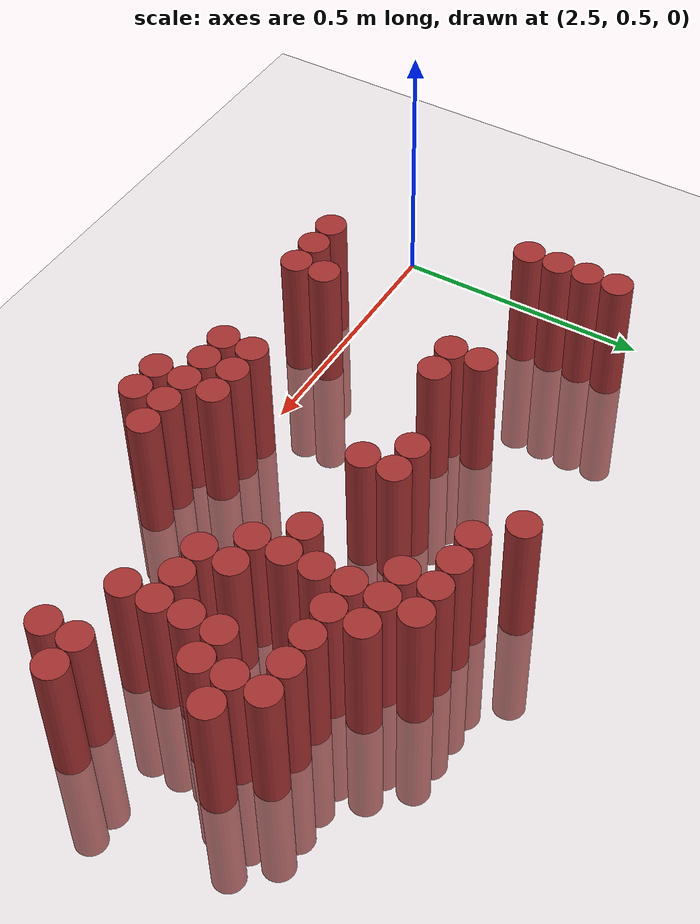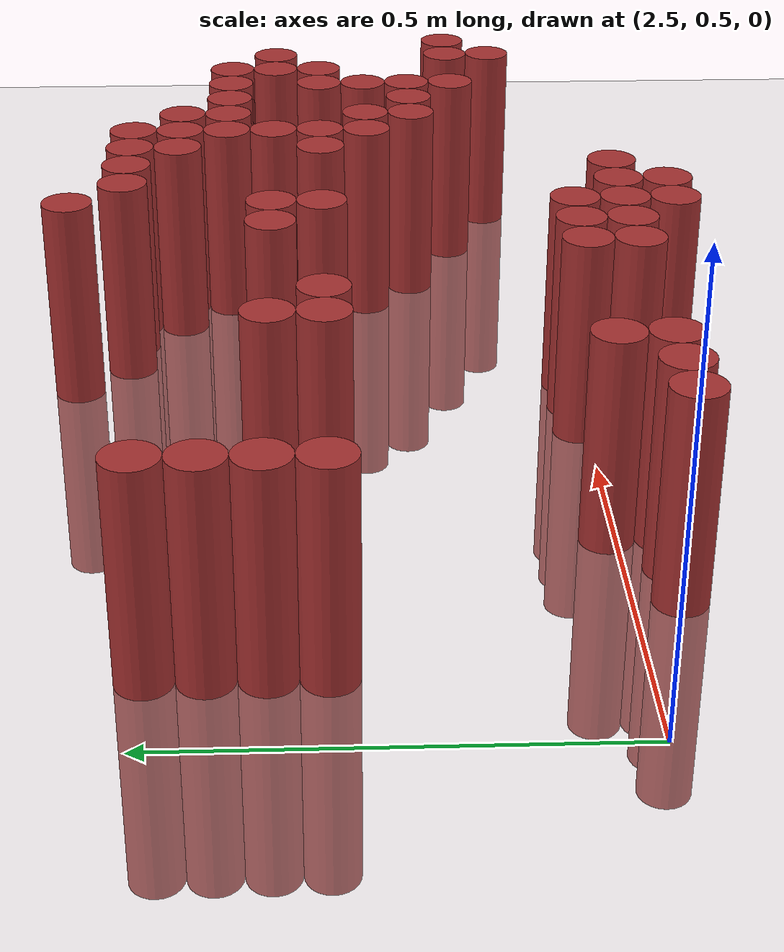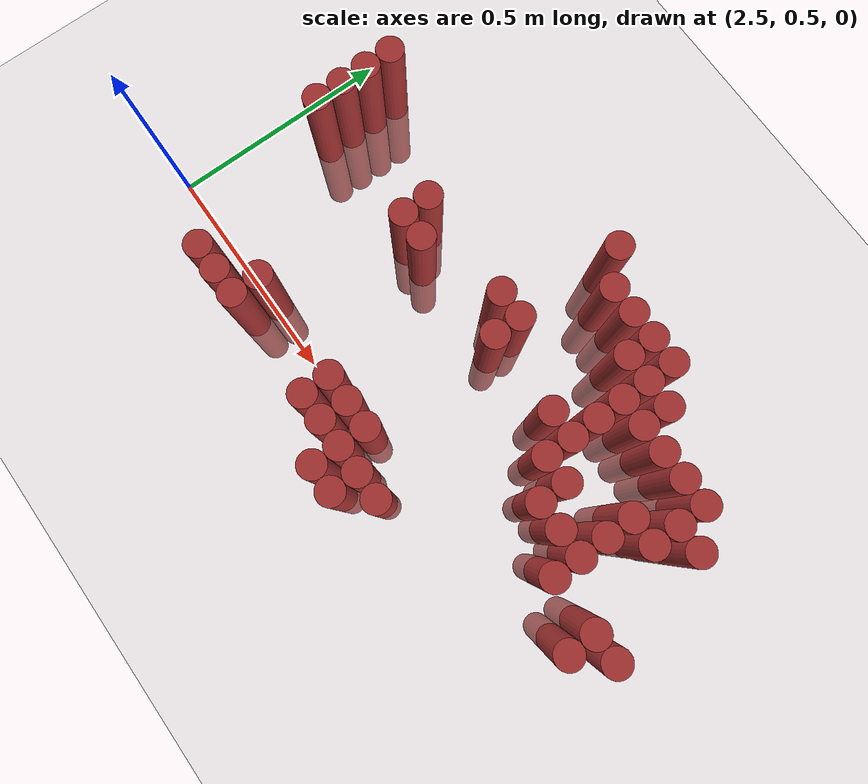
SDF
<sdf version="1.6">
 <world name="default">
  <model name="ground_plane">
   <static>1</static>
   <link name="link">
    <collision name="collision">
     <geometry><plane><normal>0 0 1</normal><size>100 100</size></plane></geometry>
     <surface><friction><ode><mu>100</mu><mu2>50</mu2></ode></friction></surface>
    </collision>
    <visual name="visual">
     <cast_shadows>0</cast_shadows>
     <geometry><plane><normal>0 0 1</normal><size>100 100</size></plane></geometry>
     <material>
      <script><uri>file://media/materials/scripts/gazebo.material</uri><name>Gazebo/Grey</name></script>
     </material>
    </visual>
   </link>
  </model>
  <model name="unit_cylinder_167">
   <static>1</static>
   <pose>3.210000 1.110000 0.000000 0.000000 0.000000 0.000000</pose>
   <link name="link">
    <inertial>
     <mass>1</mass>
     <inertia><ixx>0.145833</ixx><ixy>0</ixy><ixz>0</ixz><iyy>0.145833</iyy><iyz>0</iyz><izz>0.125</izz></inertia>
    </inertial>
    <collision name="collision">
     <geometry><cylinder><radius>0.030000</radius><length>0.5</length></cylinder></geometry>
    </collision>
    <visual name="visual">
     <geometry><cylinder><radius>0.030000</radius><length>0.5</length></cylinder></geometry>
     <material>
      <ambient>0.648000 0.192000 0.192000 1</ambient>
      <diffuse>0.648000 0.192000 0.192000 1</diffuse>
     </material>
     <material>
      <script><name>Gazebo/Grey</name><uri>file://media/materials/scripts/gazebo.material</uri></script>
     </material>
    </visual>
   </link>
  </model>
  <model name="unit_cylinder_173">
   <static>1</static>
   <pose>3.270000 1.050000 0.000000 0.000000 0.000000 0.000000</pose>
   <link name="link">
    <inertial>
     <mass>1</mass>
     <inertia><ixx>0.145833</ixx><ixy>0</ixy><ixz>0</ixz><iyy>0.145833</iyy><iyz>0</iyz><izz>0.125</izz></inertia>
    </inertial>
    <collision name="collision">
     <geometry><cylinder><radius>0.030000</radius><length>0.5</length></cylinder></geometry>
    </collision>
    <visual name="visual">
     <geometry><cylinder><radius>0.030000</radius><length>0.5</length></cylinder></geometry>
     <material>
      <ambient>0.648000 0.192000 0.192000 1</ambient>
      <diffuse>0.648000 0.192000 0.192000 1</diffuse>
     </material>
     <material>
      <script><name>Gazebo/Grey</name><uri>file://media/materials/scripts/gazebo.material</uri></script>
     </material>
    </visual>
   </link>
  </model>
  <model name="unit_cylinder_174">
   <static>1</static>
   <pose>3.330000 1.050000 0.000000 0.000000 0.000000 0.000000</pose>
   <link name="link">
    <inertial>
     <mass>1</mass>
     <inertia><ixx>0.145833</ixx><ixy>0</ixy><ixz>0</ixz><iyy>0.145833</iyy><iyz>0</iyz><izz>0.125</izz></inertia>
    </inertial>
    <collision name="collision">
     <geometry><cylinder><radius>0.030000</radius><length>0.5</length></cylinder></geometry>
    </collision>
    <visual name="visual">
     <geometry><cylinder><radius>0.030000</radius><length>0.5</length></cylinder></geometry>
     <material>
      <ambient>0.648000 0.192000 0.192000 1</ambient>
      <diffuse>0.648000 0.192000 0.192000 1</diffuse>
     </material>
     <material>
      <script><name>Gazebo/Grey</name><uri>file://media/materials/scripts/gazebo.material</uri></script>
     </material>
    </visual>
   </link>
  </model>
  <model name="unit_cylinder_175">
   <static>1</static>
   <pose>3.390000 1.050000 0.000000 0.000000 0.000000 0.000000</pose>
   <link name="link">
    <inertial>
     <mass>1</mass>
     <inertia><ixx>0.145833</ixx><ixy>0</ixy><ixz>0</ixz><iyy>0.145833</iyy><iyz>0</iyz><izz>0.125</izz></inertia>
    </inertial>
    <collision name="collision">
     <geometry><cylinder><radius>0.030000</radius><length>0.5</length></cylinder></geometry>
    </collision>
    <visual name="visual">
     <geometry><cylinder><radius>0.030000</radius><length>0.5</length></cylinder></geometry>
     <material>
      <ambient>0.648000 0.192000 0.192000 1</ambient>
      <diffuse>0.648000 0.192000 0.192000 1</diffuse>
     </material>
     <material>
      <script><name>Gazebo/Grey</name><uri>file://media/materials/scripts/gazebo.material</uri></script>
     </material>
    </visual>
   </link>
  </model>
  <model name="unit_cylinder_176">
   <static>1</static>
   <pose>3.450000 1.050000 0.000000 0.000000 0.000000 0.000000</pose>
   <link name="link">
    <inertial>
     <mass>1</mass>
     <inertia><ixx>0.145833</ixx><ixy>0</ixy><ixz>0</ixz><iyy>0.145833</iyy><iyz>0</iyz><izz>0.125</izz></inertia>
    </inertial>
    <collision name="collision">
     <geometry><cylinder><radius>0.030000</radius><length>0.5</length></cylinder></geometry>
    </collision>
    <visual name="visual">
     <geometry><cylinder><radius>0.030000</radius><length>0.5</length></cylinder></geometry>
     <material>
      <ambient>0.648000 0.192000 0.192000 1</ambient>
      <diffuse>0.648000 0.192000 0.192000 1</diffuse>
     </material>
     <material>
      <script><name>Gazebo/Grey</name><uri>file://media/materials/scripts/gazebo.material</uri></script>
     </material>
    </visual>
   </link>
  </model>
  <model name="unit_cylinder_180">
   <static>1</static>
   <pose>2.610000 0.990000 0.000000 0.000000 0.000000 0.000000</pose>
   <link name="link">
    <inertial>
     <mass>1</mass>
     <inertia><ixx>0.145833</ixx><ixy>0</ixy><ixz>0</ixz><iyy>0.145833</iyy><iyz>0</iyz><izz>0.125</izz></inertia>
    </inertial>
    <collision name="collision">
     <geometry><cylinder><radius>0.030000</radius><length>0.5</length></cylinder></geometry>
    </collision>
    <visual name="visual">
     <geometry><cylinder><radius>0.030000</radius><length>0.5</length></cylinder></geometry>
     <material>
      <ambient>0.648000 0.192000 0.192000 1</ambient>
      <diffuse>0.648000 0.192000 0.192000 1</diffuse>
     </material>
     <material>
      <script><name>Gazebo/Grey</name><uri>file://media/materials/scripts/gazebo.material</uri></script>
     </material>
    </visual>
   </link>
  </model>
  <model name="unit_cylinder_181">
   <static>1</static>
   <pose>3.390000 0.990000 0.000000 0.000000 0.000000 0.000000</pose>
   <link name="link">
    <inertial>
     <mass>1</mass>
     <inertia><ixx>0.145833</ixx><ixy>0</ixy><ixz>0</ixz><iyy>0.145833</iyy><iyz>0</iyz><izz>0.125</izz></inertia>
    </inertial>
    <collision name="collision">
     <geometry><cylinder><radius>0.030000</radius><length>0.5</length></cylinder></geometry>
    </collision>
    <visual name="visual">
     <geometry><cylinder><radius>0.030000</radius><length>0.5</length></cylinder></geometry>
     <material>
      <ambient>0.648000 0.192000 0.192000 1</ambient>
      <diffuse>0.648000 0.192000 0.192000 1</diffuse>
     </material>
     <material>
      <script><name>Gazebo/Grey</name><uri>file://media/materials/scripts/gazebo.material</uri></script>
     </material>
    </visual>
   </link>
  </model>
  <model name="unit_cylinder_182">
   <static>1</static>
   <pose>3.450000 0.990000 0.000000 0.000000 0.000000 0.000000</pose>
   <link name="link">
    <inertial>
     <mass>1</mass>
     <inertia><ixx>0.145833</ixx><ixy>0</ixy><ixz>0</ixz><iyy>0.145833</iyy><iyz>0</iyz><izz>0.125</izz></inertia>
    </inertial>
    <collision name="collision">
     <geometry><cylinder><radius>0.030000</radius><length>0.5</length></cylinder></geometry>
    </collision>
    <visual name="visual">
     <geometry><cylinder><radius>0.030000</radius><length>0.5</length></cylinder></geometry>
     <material>
      <ambient>0.648000 0.192000 0.192000 1</ambient>
      <diffuse>0.648000 0.192000 0.192000 1</diffuse>
     </material>
     <material>
      <script><name>Gazebo/Grey</name><uri>file://media/materials/scripts/gazebo.material</uri></script>
     </material>
    </visual>
   </link>
  </model>
  <model name="unit_cylinder_183">
   <static>1</static>
   <pose>3.510000 0.990000 0.000000 0.000000 0.000000 0.000000</pose>
   <link name="link">
    <inertial>
     <mass>1</mass>
     <inertia><ixx>0.145833</ixx><ixy>0</ixy><ixz>0</ixz><iyy>0.145833</iyy><iyz>0</iyz><izz>0.125</izz></inertia>
    </inertial>
    <collision name="collision">
     <geometry><cylinder><radius>0.030000</radius><length>0.5</length></cylinder></geometry>
    </collision>
    <visual name="visual">
     <geometry><cylinder><radius>0.030000</radius><length>0.5</length></cylinder></geometry>
     <material>
      <ambient>0.648000 0.192000 0.192000 1</ambient>
      <diffuse>0.648000 0.192000 0.192000 1</diffuse>
     </material>
     <material>
      <script><name>Gazebo/Grey</name><uri>file://media/materials/scripts/gazebo.material</uri></script>
     </material>
    </visual>
   </link>
  </model>
  <model name="unit_cylinder_186">
   <static>1</static>
   <pose>2.610000 0.930000 0.000000 0.000000 0.000000 0.000000</pose>
   <link name="link">
    <inertial>
     <mass>1</mass>
     <inertia><ixx>0.145833</ixx><ixy>0</ixy><ixz>0</ixz><iyy>0.145833</iyy><iyz>0</iyz><izz>0.125</izz></inertia>
    </inertial>
    <collision name="collision">
     <geometry><cylinder><radius>0.030000</radius><length>0.5</length></cylinder></geometry>
    </collision>
    <visual name="visual">
     <geometry><cylinder><radius>0.030000</radius><length>0.5</length></cylinder></geometry>
     <material>
      <ambient>0.648000 0.192000 0.192000 1</ambient>
      <diffuse>0.648000 0.192000 0.192000 1</diffuse>
     </material>
     <material>
      <script><name>Gazebo/Grey</name><uri>file://media/materials/scripts/gazebo.material</uri></script>
     </material>
    </visual>
   </link>
  </model>
  <model name="unit_cylinder_187">
   <static>1</static>
   <pose>3.450000 0.930000 0.000000 0.000000 0.000000 0.000000</pose>
   <link name="link">
    <inertial>
     <mass>1</mass>
     <inertia><ixx>0.145833</ixx><ixy>0</ixy><ixz>0</ixz><iyy>0.145833</iyy><iyz>0</iyz><izz>0.125</izz></inertia>
    </inertial>
    <collision name="collision">
     <geometry><cylinder><radius>0.030000</radius><length>0.5</length></cylinder></geometry>
    </collision>
    <visual name="visual">
     <geometry><cylinder><radius>0.030000</radius><length>0.5</length></cylinder></geometry>
     <material>
      <ambient>0.648000 0.192000 0.192000 1</ambient>
      <diffuse>0.648000 0.192000 0.192000 1</diffuse>
     </material>
     <material>
      <script><name>Gazebo/Grey</name><uri>file://media/materials/scripts/gazebo.material</uri></script>
     </material>
    </visual>
   </link>
  </model>
  <model name="unit_cylinder_188">
   <static>1</static>
   <pose>3.510000 0.930000 0.000000 0.000000 0.000000 0.000000</pose>
   <link name="link">
    <inertial>
     <mass>1</mass>
     <inertia><ixx>0.145833</ixx><ixy>0</ixy><ixz>0</ixz><iyy>0.145833</iyy><iyz>0</iyz><izz>0.125</izz></inertia>
    </inertial>
    <collision name="collision">
     <geometry><cylinder><radius>0.030000</radius><length>0.5</length></cylinder></geometry>
    </collision>
    <visual name="visual">
     <geometry><cylinder><radius>0.030000</radius><length>0.5</length></cylinder></geometry>
     <material>
      <ambient>0.648000 0.192000 0.192000 1</ambient>
      <diffuse>0.648000 0.192000 0.192000 1</diffuse>
     </material>
     <material>
      <script><name>Gazebo/Grey</name><uri>file://media/materials/scripts/gazebo.material</uri></script>
     </material>
    </visual>
   </link>
  </model>
  <model name="unit_cylinder_189">
   <static>1</static>
   <pose>3.570000 0.930000 0.000000 0.000000 0.000000 0.000000</pose>
   <link name="link">
    <inertial>
     <mass>1</mass>
     <inertia><ixx>0.145833</ixx><ixy>0</ixy><ixz>0</ixz><iyy>0.145833</iyy><iyz>0</iyz><izz>0.125</izz></inertia>
    </inertial>
    <collision name="collision">
     <geometry><cylinder><radius>0.030000</radius><length>0.5</length></cylinder></geometry>
    </collision>
    <visual name="visual">
     <geometry><cylinder><radius>0.030000</radius><length>0.5</length></cylinder></geometry>
     <material>
      <ambient>0.648000 0.192000 0.192000 1</ambient>
      <diffuse>0.648000 0.192000 0.192000 1</diffuse>
     </material>
     <material>
      <script><name>Gazebo/Grey</name><uri>file://media/materials/scripts/gazebo.material</uri></script>
     </material>
    </visual>
   </link>
  </model>
  <model name="unit_cylinder_190">
   <static>1</static>
   <pose>3.630000 0.930000 0.000000 0.000000 0.000000 0.000000</pose>
   <link name="link">
    <inertial>
     <mass>1</mass>
     <inertia><ixx>0.145833</ixx><ixy>0</ixy><ixz>0</ixz><iyy>0.145833</iyy><iyz>0</iyz><izz>0.125</izz></inertia>
    </inertial>
    <collision name="collision">
     <geometry><cylinder><radius>0.030000</radius><length>0.5</length></cylinder></geometry>
    </collision>
    <visual name="visual">
     <geometry><cylinder><radius>0.030000</radius><length>0.5</length></cylinder></geometry>
     <material>
      <ambient>0.648000 0.192000 0.192000 1</ambient>
      <diffuse>0.648000 0.192000 0.192000 1</diffuse>
     </material>
     <material>
      <script><name>Gazebo/Grey</name><uri>file://media/materials/scripts/gazebo.material</uri></script>
     </material>
    </visual>
   </link>
  </model>
  <model name="unit_cylinder_191">
   <static>1</static>
   <pose>3.690000 0.930000 0.000000 0.000000 0.000000 0.000000</pose>
   <link name="link">
    <inertial>
     <mass>1</mass>
     <inertia><ixx>0.145833</ixx><ixy>0</ixy><ixz>0</ixz><iyy>0.145833</iyy><iyz>0</iyz><izz>0.125</izz></inertia>
    </inertial>
    <collision name="collision">
     <geometry><cylinder><radius>0.030000</radius><length>0.5</length></cylinder></geometry>
    </collision>
    <visual name="visual">
     <geometry><cylinder><radius>0.030000</radius><length>0.5</length></cylinder></geometry>
     <material>
      <ambient>0.648000 0.192000 0.192000 1</ambient>
      <diffuse>0.648000 0.192000 0.192000 1</diffuse>
     </material>
     <material>
      <script><name>Gazebo/Grey</name><uri>file://media/materials/scripts/gazebo.material</uri></script>
     </material>
    </visual>
   </link>
  </model>
  <model name="unit_cylinder_194">
   <static>1</static>
   <pose>2.610000 0.870000 0.000000 0.000000 0.000000 0.000000</pose>
   <link name="link">
    <inertial>
     <mass>1</mass>
     <inertia><ixx>0.145833</ixx><ixy>0</ixy><ixz>0</ixz><iyy>0.145833</iyy><iyz>0</iyz><izz>0.125</izz></inertia>
    </inertial>
    <collision name="collision">
     <geometry><cylinder><radius>0.030000</radius><length>0.5</length></cylinder></geometry>
    </collision>
    <visual name="visual">
     <geometry><cylinder><radius>0.030000</radius><length>0.5</length></cylinder></geometry>
     <material>
      <ambient>0.648000 0.192000 0.192000 1</ambient>
      <diffuse>0.648000 0.192000 0.192000 1</diffuse>
     </material>
     <material>
      <script><name>Gazebo/Grey</name><uri>file://media/materials/scripts/gazebo.material</uri></script>
     </material>
    </visual>
   </link>
  </model>
  <model name="unit_cylinder_195">
   <static>1</static>
   <pose>2.910000 0.870000 0.000000 0.000000 0.000000 0.000000</pose>
   <link name="link">
    <inertial>
     <mass>1</mass>
     <inertia><ixx>0.145833</ixx><ixy>0</ixy><ixz>0</ixz><iyy>0.145833</iyy><iyz>0</iyz><izz>0.125</izz></inertia>
    </inertial>
    <collision name="collision">
     <geometry><cylinder><radius>0.030000</radius><length>0.5</length></cylinder></geometry>
    </collision>
    <visual name="visual">
     <geometry><cylinder><radius>0.030000</radius><length>0.5</length></cylinder></geometry>
     <material>
      <ambient>0.648000 0.192000 0.192000 1</ambient>
      <diffuse>0.648000 0.192000 0.192000 1</diffuse>
     </material>
     <material>
      <script><name>Gazebo/Grey</name><uri>file://media/materials/scripts/gazebo.material</uri></script>
     </material>
    </visual>
   </link>
  </model>
  <model name="unit_cylinder_196">
   <static>1</static>
   <pose>3.150000 0.870000 0.000000 0.000000 0.000000 0.000000</pose>
   <link name="link">
    <inertial>
     <mass>1</mass>
     <inertia><ixx>0.145833</ixx><ixy>0</ixy><ixz>0</ixz><iyy>0.145833</iyy><iyz>0</iyz><izz>0.125</izz></inertia>
    </inertial>
    <collision name="collision">
     <geometry><cylinder><radius>0.030000</radius><length>0.5</length></cylinder></geometry>
    </collision>
    <visual name="visual">
     <geometry><cylinder><radius>0.030000</radius><length>0.5</length></cylinder></geometry>
     <material>
      <ambient>0.648000 0.192000 0.192000 1</ambient>
      <diffuse>0.648000 0.192000 0.192000 1</diffuse>
     </material>
     <material>
      <script><name>Gazebo/Grey</name><uri>file://media/materials/scripts/gazebo.material</uri></script>
     </material>
    </visual>
   </link>
  </model>
  <model name="unit_cylinder_197">
   <static>1</static>
   <pose>3.210000 0.870000 0.000000 0.000000 0.000000 0.000000</pose>
   <link name="link">
    <inertial>
     <mass>1</mass>
     <inertia><ixx>0.145833</ixx><ixy>0</ixy><ixz>0</ixz><iyy>0.145833</iyy><iyz>0</iyz><izz>0.125</izz></inertia>
    </inertial>
    <collision name="collision">
     <geometry><cylinder><radius>0.030000</radius><length>0.5</length></cylinder></geometry>
    </collision>
    <visual name="visual">
     <geometry><cylinder><radius>0.030000</radius><length>0.5</length></cylinder></geometry>
     <material>
      <ambient>0.648000 0.192000 0.192000 1</ambient>
      <diffuse>0.648000 0.192000 0.192000 1</diffuse>
     </material>
     <material>
      <script><name>Gazebo/Grey</name><uri>file://media/materials/scripts/gazebo.material</uri></script>
     </material>
    </visual>
   </link>
  </model>
  <model name="unit_cylinder_198">
   <static>1</static>
   <pose>3.450000 0.870000 0.000000 0.000000 0.000000 0.000000</pose>
   <link name="link">
    <inertial>
     <mass>1</mass>
     <inertia><ixx>0.145833</ixx><ixy>0</ixy><ixz>0</ixz><iyy>0.145833</iyy><iyz>0</iyz><izz>0.125</izz></inertia>
    </inertial>
    <collision name="collision">
     <geometry><cylinder><radius>0.030000</radius><length>0.5</length></cylinder></geometry>
    </collision>
    <visual name="visual">
     <geometry><cylinder><radius>0.030000</radius><length>0.5</length></cylinder></geometry>
     <material>
      <ambient>0.648000 0.192000 0.192000 1</ambient>
      <diffuse>0.648000 0.192000 0.192000 1</diffuse>
     </material>
     <material>
      <script><name>Gazebo/Grey</name><uri>file://media/materials/scripts/gazebo.material</uri></script>
     </material>
    </visual>
   </link>
  </model>
  <model name="unit_cylinder_199">
   <static>1</static>
   <pose>3.690000 0.870000 0.000000 0.000000 0.000000 0.000000</pose>
   <link name="link">
    <inertial>
     <mass>1</mass>
     <inertia><ixx>0.145833</ixx><ixy>0</ixy><ixz>0</ixz><iyy>0.145833</iyy><iyz>0</iyz><izz>0.125</izz></inertia>
    </inertial>
    <collision name="collision">
     <geometry><cylinder><radius>0.030000</radius><length>0.5</length></cylinder></geometry>
    </collision>
    <visual name="visual">
     <geometry><cylinder><radius>0.030000</radius><length>0.5</length></cylinder></geometry>
     <material>
      <ambient>0.648000 0.192000 0.192000 1</ambient>
      <diffuse>0.648000 0.192000 0.192000 1</diffuse>
     </material>
     <material>
      <script><name>Gazebo/Grey</name><uri>file://media/materials/scripts/gazebo.material</uri></script>
     </material>
    </visual>
   </link>
  </model>
  <model name="unit_cylinder_200">
   <static>1</static>
   <pose>3.750000 0.870000 0.000000 0.000000 0.000000 0.000000</pose>
   <link name="link">
    <inertial>
     <mass>1</mass>
     <inertia><ixx>0.145833</ixx><ixy>0</ixy><ixz>0</ixz><iyy>0.145833</iyy><iyz>0</iyz><izz>0.125</izz></inertia>
    </inertial>
    <collision name="collision">
     <geometry><cylinder><radius>0.030000</radius><length>0.5</length></cylinder></geometry>
    </collision>
    <visual name="visual">
     <geometry><cylinder><radius>0.030000</radius><length>0.5</length></cylinder></geometry>
     <material>
      <ambient>0.648000 0.192000 0.192000 1</ambient>
      <diffuse>0.648000 0.192000 0.192000 1</diffuse>
     </material>
     <material>
      <script><name>Gazebo/Grey</name><uri>file://media/materials/scripts/gazebo.material</uri></script>
     </material>
    </visual>
   </link>
  </model>
  <model name="unit_cylinder_203">
   <static>1</static>
   <pose>2.610000 0.810000 0.000000 0.000000 0.000000 0.000000</pose>
   <link name="link">
    <inertial>
     <mass>1</mass>
     <inertia><ixx>0.145833</ixx><ixy>0</ixy><ixz>0</ixz><iyy>0.145833</iyy><iyz>0</iyz><izz>0.125</izz></inertia>
    </inertial>
    <collision name="collision">
     <geometry><cylinder><radius>0.030000</radius><length>0.5</length></cylinder></geometry>
    </collision>
    <visual name="visual">
     <geometry><cylinder><radius>0.030000</radius><length>0.5</length></cylinder></geometry>
     <material>
      <ambient>0.648000 0.192000 0.192000 1</ambient>
      <diffuse>0.648000 0.192000 0.192000 1</diffuse>
     </material>
     <material>
      <script><name>Gazebo/Grey</name><uri>file://media/materials/scripts/gazebo.material</uri></script>
     </material>
    </visual>
   </link>
  </model>
  <model name="unit_cylinder_204">
   <static>1</static>
   <pose>2.910000 0.810000 0.000000 0.000000 0.000000 0.000000</pose>
   <link name="link">
    <inertial>
     <mass>1</mass>
     <inertia><ixx>0.145833</ixx><ixy>0</ixy><ixz>0</ixz><iyy>0.145833</iyy><iyz>0</iyz><izz>0.125</izz></inertia>
    </inertial>
    <collision name="collision">
     <geometry><cylinder><radius>0.030000</radius><length>0.5</length></cylinder></geometry>
    </collision>
    <visual name="visual">
     <geometry><cylinder><radius>0.030000</radius><length>0.5</length></cylinder></geometry>
     <material>
      <ambient>0.648000 0.192000 0.192000 1</ambient>
      <diffuse>0.648000 0.192000 0.192000 1</diffuse>
     </material>
     <material>
      <script><name>Gazebo/Grey</name><uri>file://media/materials/scripts/gazebo.material</uri></script>
     </material>
    </visual>
   </link>
  </model>
  <model name="unit_cylinder_205">
   <static>1</static>
   <pose>2.970000 0.810000 0.000000 0.000000 0.000000 0.000000</pose>
   <link name="link">
    <inertial>
     <mass>1</mass>
     <inertia><ixx>0.145833</ixx><ixy>0</ixy><ixz>0</ixz><iyy>0.145833</iyy><iyz>0</iyz><izz>0.125</izz></inertia>
    </inertial>
    <collision name="collision">
     <geometry><cylinder><radius>0.030000</radius><length>0.5</length></cylinder></geometry>
    </collision>
    <visual name="visual">
     <geometry><cylinder><radius>0.030000</radius><length>0.5</length></cylinder></geometry>
     <material>
      <ambient>0.648000 0.192000 0.192000 1</ambient>
      <diffuse>0.648000 0.192000 0.192000 1</diffuse>
     </material>
     <material>
      <script><name>Gazebo/Grey</name><uri>file://media/materials/scripts/gazebo.material</uri></script>
     </material>
    </visual>
   </link>
  </model>
  <model name="unit_cylinder_206">
   <static>1</static>
   <pose>3.210000 0.810000 0.000000 0.000000 0.000000 0.000000</pose>
   <link name="link">
    <inertial>
     <mass>1</mass>
     <inertia><ixx>0.145833</ixx><ixy>0</ixy><ixz>0</ixz><iyy>0.145833</iyy><iyz>0</iyz><izz>0.125</izz></inertia>
    </inertial>
    <collision name="collision">
     <geometry><cylinder><radius>0.030000</radius><length>0.5</length></cylinder></geometry>
    </collision>
    <visual name="visual">
     <geometry><cylinder><radius>0.030000</radius><length>0.5</length></cylinder></geometry>
     <material>
      <ambient>0.648000 0.192000 0.192000 1</ambient>
      <diffuse>0.648000 0.192000 0.192000 1</diffuse>
     </material>
     <material>
      <script><name>Gazebo/Grey</name><uri>file://media/materials/scripts/gazebo.material</uri></script>
     </material>
    </visual>
   </link>
  </model>
  <model name="unit_cylinder_207">
   <static>1</static>
   <pose>3.390000 0.810000 0.000000 0.000000 0.000000 0.000000</pose>
   <link name="link">
    <inertial>
     <mass>1</mass>
     <inertia><ixx>0.145833</ixx><ixy>0</ixy><ixz>0</ixz><iyy>0.145833</iyy><iyz>0</iyz><izz>0.125</izz></inertia>
    </inertial>
    <collision name="collision">
     <geometry><cylinder><radius>0.030000</radius><length>0.5</length></cylinder></geometry>
    </collision>
    <visual name="visual">
     <geometry><cylinder><radius>0.030000</radius><length>0.5</length></cylinder></geometry>
     <material>
      <ambient>0.648000 0.192000 0.192000 1</ambient>
      <diffuse>0.648000 0.192000 0.192000 1</diffuse>
     </material>
     <material>
      <script><name>Gazebo/Grey</name><uri>file://media/materials/scripts/gazebo.material</uri></script>
     </material>
    </visual>
   </link>
  </model>
  <model name="unit_cylinder_208">
   <static>1</static>
   <pose>3.450000 0.810000 0.000000 0.000000 0.000000 0.000000</pose>
   <link name="link">
    <inertial>
     <mass>1</mass>
     <inertia><ixx>0.145833</ixx><ixy>0</ixy><ixz>0</ixz><iyy>0.145833</iyy><iyz>0</iyz><izz>0.125</izz></inertia>
    </inertial>
    <collision name="collision">
     <geometry><cylinder><radius>0.030000</radius><length>0.5</length></cylinder></geometry>
    </collision>
    <visual name="visual">
     <geometry><cylinder><radius>0.030000</radius><length>0.5</length></cylinder></geometry>
     <material>
      <ambient>0.648000 0.192000 0.192000 1</ambient>
      <diffuse>0.648000 0.192000 0.192000 1</diffuse>
     </material>
     <material>
      <script><name>Gazebo/Grey</name><uri>file://media/materials/scripts/gazebo.material</uri></script>
     </material>
    </visual>
   </link>
  </model>
  <model name="unit_cylinder_209">
   <static>1</static>
   <pose>3.630000 0.810000 0.000000 0.000000 0.000000 0.000000</pose>
   <link name="link">
    <inertial>
     <mass>1</mass>
     <inertia><ixx>0.145833</ixx><ixy>0</ixy><ixz>0</ixz><iyy>0.145833</iyy><iyz>0</iyz><izz>0.125</izz></inertia>
    </inertial>
    <collision name="collision">
     <geometry><cylinder><radius>0.030000</radius><length>0.5</length></cylinder></geometry>
    </collision>
    <visual name="visual">
     <geometry><cylinder><radius>0.030000</radius><length>0.5</length></cylinder></geometry>
     <material>
      <ambient>0.648000 0.192000 0.192000 1</ambient>
      <diffuse>0.648000 0.192000 0.192000 1</diffuse>
     </material>
     <material>
      <script><name>Gazebo/Grey</name><uri>file://media/materials/scripts/gazebo.material</uri></script>
     </material>
    </visual>
   </link>
  </model>
  <model name="unit_cylinder_210">
   <static>1</static>
   <pose>3.690000 0.810000 0.000000 0.000000 0.000000 0.000000</pose>
   <link name="link">
    <inertial>
     <mass>1</mass>
     <inertia><ixx>0.145833</ixx><ixy>0</ixy><ixz>0</ixz><iyy>0.145833</iyy><iyz>0</iyz><izz>0.125</izz></inertia>
    </inertial>
    <collision name="collision">
     <geometry><cylinder><radius>0.030000</radius><length>0.5</length></cylinder></geometry>
    </collision>
    <visual name="visual">
     <geometry><cylinder><radius>0.030000</radius><length>0.5</length></cylinder></geometry>
     <material>
      <ambient>0.648000 0.192000 0.192000 1</ambient>
      <diffuse>0.648000 0.192000 0.192000 1</diffuse>
     </material>
     <material>
      <script><name>Gazebo/Grey</name><uri>file://media/materials/scripts/gazebo.material</uri></script>
     </material>
    </visual>
   </link>
  </model>
  <model name="unit_cylinder_214">
   <static>1</static>
   <pose>3.450000 0.750000 0.000000 0.000000 0.000000 0.000000</pose>
   <link name="link">
    <inertial>
     <mass>1</mass>
     <inertia><ixx>0.145833</ixx><ixy>0</ixy><ixz>0</ixz><iyy>0.145833</iyy><iyz>0</iyz><izz>0.125</izz></inertia>
    </inertial>
    <collision name="collision">
     <geometry><cylinder><radius>0.030000</radius><length>0.5</length></cylinder></geometry>
    </collision>
    <visual name="visual">
     <geometry><cylinder><radius>0.030000</radius><length>0.5</length></cylinder></geometry>
     <material>
      <ambient>0.648000 0.192000 0.192000 1</ambient>
      <diffuse>0.648000 0.192000 0.192000 1</diffuse>
     </material>
     <material>
      <script><name>Gazebo/Grey</name><uri>file://media/materials/scripts/gazebo.material</uri></script>
     </material>
    </visual>
   </link>
  </model>
  <model name="unit_cylinder_215">
   <static>1</static>
   <pose>3.510000 0.750000 0.000000 0.000000 0.000000 0.000000</pose>
   <link name="link">
    <inertial>
     <mass>1</mass>
     <inertia><ixx>0.145833</ixx><ixy>0</ixy><ixz>0</ixz><iyy>0.145833</iyy><iyz>0</iyz><izz>0.125</izz></inertia>
    </inertial>
    <collision name="collision">
     <geometry><cylinder><radius>0.030000</radius><length>0.5</length></cylinder></geometry>
    </collision>
    <visual name="visual">
     <geometry><cylinder><radius>0.030000</radius><length>0.5</length></cylinder></geometry>
     <material>
      <ambient>0.648000 0.192000 0.192000 1</ambient>
      <diffuse>0.648000 0.192000 0.192000 1</diffuse>
     </material>
     <material>
      <script><name>Gazebo/Grey</name><uri>file://media/materials/scripts/gazebo.material</uri></script>
     </material>
    </visual>
   </link>
  </model>
  <model name="unit_cylinder_216">
   <static>1</static>
   <pose>3.630000 0.750000 0.000000 0.000000 0.000000 0.000000</pose>
   <link name="link">
    <inertial>
     <mass>1</mass>
     <inertia><ixx>0.145833</ixx><ixy>0</ixy><ixz>0</ixz><iyy>0.145833</iyy><iyz>0</iyz><izz>0.125</izz></inertia>
    </inertial>
    <collision name="collision">
     <geometry><cylinder><radius>0.030000</radius><length>0.5</length></cylinder></geometry>
    </collision>
    <visual name="visual">
     <geometry><cylinder><radius>0.030000</radius><length>0.5</length></cylinder></geometry>
     <material>
      <ambient>0.648000 0.192000 0.192000 1</ambient>
      <diffuse>0.648000 0.192000 0.192000 1</diffuse>
     </material>
     <material>
      <script><name>Gazebo/Grey</name><uri>file://media/materials/scripts/gazebo.material</uri></script>
     </material>
    </visual>
   </link>
  </model>
  <model name="unit_cylinder_219">
   <static>1</static>
   <pose>3.510000 0.690000 0.000000 0.000000 0.000000 0.000000</pose>
   <link name="link">
    <inertial>
     <mass>1</mass>
     <inertia><ixx>0.145833</ixx><ixy>0</ixy><ixz>0</ixz><iyy>0.145833</iyy><iyz>0</iyz><izz>0.125</izz></inertia>
    </inertial>
    <collision name="collision">
     <geometry><cylinder><radius>0.030000</radius><length>0.5</length></cylinder></geometry>
    </collision>
    <visual name="visual">
     <geometry><cylinder><radius>0.030000</radius><length>0.5</length></cylinder></geometry>
     <material>
      <ambient>0.648000 0.192000 0.192000 1</ambient>
      <diffuse>0.648000 0.192000 0.192000 1</diffuse>
     </material>
     <material>
      <script><name>Gazebo/Grey</name><uri>file://media/materials/scripts/gazebo.material</uri></script>
     </material>
    </visual>
   </link>
  </model>
  <model name="unit_cylinder_220">
   <static>1</static>
   <pose>3.570000 0.690000 0.000000 0.000000 0.000000 0.000000</pose>
   <link name="link">
    <inertial>
     <mass>1</mass>
     <inertia><ixx>0.145833</ixx><ixy>0</ixy><ixz>0</ixz><iyy>0.145833</iyy><iyz>0</iyz><izz>0.125</izz></inertia>
    </inertial>
    <collision name="collision">
     <geometry><cylinder><radius>0.030000</radius><length>0.5</length></cylinder></geometry>
    </collision>
    <visual name="visual">
     <geometry><cylinder><radius>0.030000</radius><length>0.5</length></cylinder></geometry>
     <material>
      <ambient>0.648000 0.192000 0.192000 1</ambient>
      <diffuse>0.648000 0.192000 0.192000 1</diffuse>
     </material>
     <material>
      <script><name>Gazebo/Grey</name><uri>file://media/materials/scripts/gazebo.material</uri></script>
     </material>
    </visual>
   </link>
  </model>
  <model name="unit_cylinder_221">
   <static>1</static>
   <pose>3.630000 0.690000 0.000000 0.000000 0.000000 0.000000</pose>
   <link name="link">
    <inertial>
     <mass>1</mass>
     <inertia><ixx>0.145833</ixx><ixy>0</ixy><ixz>0</ixz><iyy>0.145833</iyy><iyz>0</iyz><izz>0.125</izz></inertia>
    </inertial>
    <collision name="collision">
     <geometry><cylinder><radius>0.030000</radius><length>0.5</length></cylinder></geometry>
    </collision>
    <visual name="visual">
     <geometry><cylinder><radius>0.030000</radius><length>0.5</length></cylinder></geometry>
     <material>
      <ambient>0.648000 0.192000 0.192000 1</ambient>
      <diffuse>0.648000 0.192000 0.192000 1</diffuse>
     </material>
     <material>
      <script><name>Gazebo/Grey</name><uri>file://media/materials/scripts/gazebo.material</uri></script>
     </material>
    </visual>
   </link>
  </model>
  <model name="unit_cylinder_223">
   <static>1</static>
   <pose>3.630000 0.630000 0.000000 0.000000 0.000000 0.000000</pose>
   <link name="link">
    <inertial>
     <mass>1</mass>
     <inertia><ixx>0.145833</ixx><ixy>0</ixy><ixz>0</ixz><iyy>0.145833</iyy><iyz>0</iyz><izz>0.125</izz></inertia>
    </inertial>
    <collision name="collision">
     <geometry><cylinder><radius>0.030000</radius><length>0.5</length></cylinder></geometry>
    </collision>
    <visual name="visual">
     <geometry><cylinder><radius>0.030000</radius><length>0.5</length></cylinder></geometry>
     <material>
      <ambient>0.648000 0.192000 0.192000 1</ambient>
      <diffuse>0.648000 0.192000 0.192000 1</diffuse>
     </material>
     <material>
      <script><name>Gazebo/Grey</name><uri>file://media/materials/scripts/gazebo.material</uri></script>
     </material>
    </visual>
   </link>
  </model>
  <model name="unit_cylinder_224">
   <static>1</static>
   <pose>3.750000 0.630000 0.000000 0.000000 0.000000 0.000000</pose>
   <link name="link">
    <inertial>
     <mass>1</mass>
     <inertia><ixx>0.145833</ixx><ixy>0</ixy><ixz>0</ixz><iyy>0.145833</iyy><iyz>0</iyz><izz>0.125</izz></inertia>
    </inertial>
    <collision name="collision">
     <geometry><cylinder><radius>0.030000</radius><length>0.5</length></cylinder></geometry>
    </collision>
    <visual name="visual">
     <geometry><cylinder><radius>0.030000</radius><length>0.5</length></cylinder></geometry>
     <material>
      <ambient>0.648000 0.192000 0.192000 1</ambient>
      <diffuse>0.648000 0.192000 0.192000 1</diffuse>
     </material>
     <material>
      <script><name>Gazebo/Grey</name><uri>file://media/materials/scripts/gazebo.material</uri></script>
     </material>
    </visual>
   </link>
  </model>
  <model name="unit_cylinder_225">
   <static>1</static>
   <pose>3.810000 0.630000 0.000000 0.000000 0.000000 0.000000</pose>
   <link name="link">
    <inertial>
     <mass>1</mass>
     <inertia><ixx>0.145833</ixx><ixy>0</ixy><ixz>0</ixz><iyy>0.145833</iyy><iyz>0</iyz><izz>0.125</izz></inertia>
    </inertial>
    <collision name="collision">
     <geometry><cylinder><radius>0.030000</radius><length>0.5</length></cylinder></geometry>
    </collision>
    <visual name="visual">
     <geometry><cylinder><radius>0.030000</radius><length>0.5</length></cylinder></geometry>
     <material>
      <ambient>0.648000 0.192000 0.192000 1</ambient>
      <diffuse>0.648000 0.192000 0.192000 1</diffuse>
     </material>
     <material>
      <script><name>Gazebo/Grey</name><uri>file://media/materials/scripts/gazebo.material</uri></script>
     </material>
    </visual>
   </link>
  </model>
  <model name="unit_cylinder_226">
   <static>1</static>
   <pose>3.750000 0.570000 0.000000 0.000000 0.000000 0.000000</pose>
   <link name="link">
    <inertial>
     <mass>1</mass>
     <inertia><ixx>0.145833</ixx><ixy>0</ixy><ixz>0</ixz><iyy>0.145833</iyy><iyz>0</iyz><izz>0.125</izz></inertia>
    </inertial>
    <collision name="collision">
     <geometry><cylinder><radius>0.030000</radius><length>0.5</length></cylinder></geometry>
    </collision>
    <visual name="visual">
     <geometry><cylinder><radius>0.030000</radius><length>0.5</length></cylinder></geometry>
     <material>
      <ambient>0.648000 0.192000 0.192000 1</ambient>
      <diffuse>0.648000 0.192000 0.192000 1</diffuse>
     </material>
     <material>
      <script><name>Gazebo/Grey</name><uri>file://media/materials/scripts/gazebo.material</uri></script>
     </material>
    </visual>
   </link>
  </model>
  <model name="unit_cylinder_227">
   <static>1</static>
   <pose>2.850000 0.510000 0.000000 0.000000 0.000000 0.000000</pose>
   <link name="link">
    <inertial>
     <mass>1</mass>
     <inertia><ixx>0.145833</ixx><ixy>0</ixy><ixz>0</ixz><iyy>0.145833</iyy><iyz>0</iyz><izz>0.125</izz></inertia>
    </inertial>
    <collision name="collision">
     <geometry><cylinder><radius>0.030000</radius><length>0.5</length></cylinder></geometry>
    </collision>
    <visual name="visual">
     <geometry><cylinder><radius>0.030000</radius><length>0.5</length></cylinder></geometry>
     <material>
      <ambient>0.648000 0.192000 0.192000 1</ambient>
      <diffuse>0.648000 0.192000 0.192000 1</diffuse>
     </material>
     <material>
      <script><name>Gazebo/Grey</name><uri>file://media/materials/scripts/gazebo.material</uri></script>
     </material>
    </visual>
   </link>
  </model>
  <model name="unit_cylinder_228">
   <static>1</static>
   <pose>3.090000 0.510000 0.000000 0.000000 0.000000 0.000000</pose>
   <link name="link">
    <inertial>
     <mass>1</mass>
     <inertia><ixx>0.145833</ixx><ixy>0</ixy><ixz>0</ixz><iyy>0.145833</iyy><iyz>0</iyz><izz>0.125</izz></inertia>
    </inertial>
    <collision name="collision">
     <geometry><cylinder><radius>0.030000</radius><length>0.5</length></cylinder></geometry>
    </collision>
    <visual name="visual">
     <geometry><cylinder><radius>0.030000</radius><length>0.5</length></cylinder></geometry>
     <material>
      <ambient>0.648000 0.192000 0.192000 1</ambient>
      <diffuse>0.648000 0.192000 0.192000 1</diffuse>
     </material>
     <material>
      <script><name>Gazebo/Grey</name><uri>file://media/materials/scripts/gazebo.material</uri></script>
     </material>
    </visual>
   </link>
  </model>
  <model name="unit_cylinder_229">
   <static>1</static>
   <pose>3.150000 0.510000 0.000000 0.000000 0.000000 0.000000</pose>
   <link name="link">
    <inertial>
     <mass>1</mass>
     <inertia><ixx>0.145833</ixx><ixy>0</ixy><ixz>0</ixz><iyy>0.145833</iyy><iyz>0</iyz><izz>0.125</izz></inertia>
    </inertial>
    <collision name="collision">
     <geometry><cylinder><radius>0.030000</radius><length>0.5</length></cylinder></geometry>
    </collision>
    <visual name="visual">
     <geometry><cylinder><radius>0.030000</radius><length>0.5</length></cylinder></geometry>
     <material>
      <ambient>0.648000 0.192000 0.192000 1</ambient>
      <diffuse>0.648000 0.192000 0.192000 1</diffuse>
     </material>
     <material>
      <script><name>Gazebo/Grey</name><uri>file://media/materials/scripts/gazebo.material</uri></script>
     </material>
    </visual>
   </link>
  </model>
  <model name="unit_cylinder_230">
   <static>1</static>
   <pose>3.210000 0.510000 0.000000 0.000000 0.000000 0.000000</pose>
   <link name="link">
    <inertial>
     <mass>1</mass>
     <inertia><ixx>0.145833</ixx><ixy>0</ixy><ixz>0</ixz><iyy>0.145833</iyy><iyz>0</iyz><izz>0.125</izz></inertia>
    </inertial>
    <collision name="collision">
     <geometry><cylinder><radius>0.030000</radius><length>0.5</length></cylinder></geometry>
    </collision>
    <visual name="visual">
     <geometry><cylinder><radius>0.030000</radius><length>0.5</length></cylinder></geometry>
     <material>
      <ambient>0.648000 0.192000 0.192000 1</ambient>
      <diffuse>0.648000 0.192000 0.192000 1</diffuse>
     </material>
     <material>
      <script><name>Gazebo/Grey</name><uri>file://media/materials/scripts/gazebo.material</uri></script>
     </material>
    </visual>
   </link>
  </model>
  <model name="unit_cylinder_233">
   <static>1</static>
   <pose>2.730000 0.450000 0.000000 0.000000 0.000000 0.000000</pose>
   <link name="link">
    <inertial>
     <mass>1</mass>
     <inertia><ixx>0.145833</ixx><ixy>0</ixy><ixz>0</ixz><iyy>0.145833</iyy><iyz>0</iyz><izz>0.125</izz></inertia>
    </inertial>
    <collision name="collision">
     <geometry><cylinder><radius>0.030000</radius><length>0.5</length></cylinder></geometry>
    </collision>
    <visual name="visual">
     <geometry><cylinder><radius>0.030000</radius><length>0.5</length></cylinder></geometry>
     <material>
      <ambient>0.648000 0.192000 0.192000 1</ambient>
      <diffuse>0.648000 0.192000 0.192000 1</diffuse>
     </material>
     <material>
      <script><name>Gazebo/Grey</name><uri>file://media/materials/scripts/gazebo.material</uri></script>
     </material>
    </visual>
   </link>
  </model>
  <model name="unit_cylinder_234">
   <static>1</static>
   <pose>2.790000 0.450000 0.000000 0.000000 0.000000 0.000000</pose>
   <link name="link">
    <inertial>
     <mass>1</mass>
     <inertia><ixx>0.145833</ixx><ixy>0</ixy><ixz>0</ixz><iyy>0.145833</iyy><iyz>0</iyz><izz>0.125</izz></inertia>
    </inertial>
    <collision name="collision">
     <geometry><cylinder><radius>0.030000</radius><length>0.5</length></cylinder></geometry>
    </collision>
    <visual name="visual">
     <geometry><cylinder><radius>0.030000</radius><length>0.5</length></cylinder></geometry>
     <material>
      <ambient>0.648000 0.192000 0.192000 1</ambient>
      <diffuse>0.648000 0.192000 0.192000 1</diffuse>
     </material>
     <material>
      <script><name>Gazebo/Grey</name><uri>file://media/materials/scripts/gazebo.material</uri></script>
     </material>
    </visual>
   </link>
  </model>
  <model name="unit_cylinder_235">
   <static>1</static>
   <pose>2.850000 0.450000 0.000000 0.000000 0.000000 0.000000</pose>
   <link name="link">
    <inertial>
     <mass>1</mass>
     <inertia><ixx>0.145833</ixx><ixy>0</ixy><ixz>0</ixz><iyy>0.145833</iyy><iyz>0</iyz><izz>0.125</izz></inertia>
    </inertial>
    <collision name="collision">
     <geometry><cylinder><radius>0.030000</radius><length>0.5</length></cylinder></geometry>
    </collision>
    <visual name="visual">
     <geometry><cylinder><radius>0.030000</radius><length>0.5</length></cylinder></geometry>
     <material>
      <ambient>0.648000 0.192000 0.192000 1</ambient>
      <diffuse>0.648000 0.192000 0.192000 1</diffuse>
     </material>
     <material>
      <script><name>Gazebo/Grey</name><uri>file://media/materials/scripts/gazebo.material</uri></script>
     </material>
    </visual>
   </link>
  </model>
  <model name="unit_cylinder_236">
   <static>1</static>
   <pose>3.090000 0.450000 0.000000 0.000000 0.000000 0.000000</pose>
   <link name="link">
    <inertial>
     <mass>1</mass>
     <inertia><ixx>0.145833</ixx><ixy>0</ixy><ixz>0</ixz><iyy>0.145833</iyy><iyz>0</iyz><izz>0.125</izz></inertia>
    </inertial>
    <collision name="collision">
     <geometry><cylinder><radius>0.030000</radius><length>0.5</length></cylinder></geometry>
    </collision>
    <visual name="visual">
     <geometry><cylinder><radius>0.030000</radius><length>0.5</length></cylinder></geometry>
     <material>
      <ambient>0.648000 0.192000 0.192000 1</ambient>
      <diffuse>0.648000 0.192000 0.192000 1</diffuse>
     </material>
     <material>
      <script><name>Gazebo/Grey</name><uri>file://media/materials/scripts/gazebo.material</uri></script>
     </material>
    </visual>
   </link>
  </model>
  <model name="unit_cylinder_237">
   <static>1</static>
   <pose>3.150000 0.450000 0.000000 0.000000 0.000000 0.000000</pose>
   <link name="link">
    <inertial>
     <mass>1</mass>
     <inertia><ixx>0.145833</ixx><ixy>0</ixy><ixz>0</ixz><iyy>0.145833</iyy><iyz>0</iyz><izz>0.125</izz></inertia>
    </inertial>
    <collision name="collision">
     <geometry><cylinder><radius>0.030000</radius><length>0.5</length></cylinder></geometry>
    </collision>
    <visual name="visual">
     <geometry><cylinder><radius>0.030000</radius><length>0.5</length></cylinder></geometry>
     <material>
      <ambient>0.648000 0.192000 0.192000 1</ambient>
      <diffuse>0.648000 0.192000 0.192000 1</diffuse>
     </material>
     <material>
      <script><name>Gazebo/Grey</name><uri>file://media/materials/scripts/gazebo.material</uri></script>
     </material>
    </visual>
   </link>
  </model>
  <model name="unit_cylinder_238">
   <static>1</static>
   <pose>3.210000 0.450000 0.000000 0.000000 0.000000 0.000000</pose>
   <link name="link">
    <inertial>
     <mass>1</mass>
     <inertia><ixx>0.145833</ixx><ixy>0</ixy><ixz>0</ixz><iyy>0.145833</iyy><iyz>0</iyz><izz>0.125</izz></inertia>
    </inertial>
    <collision name="collision">
     <geometry><cylinder><radius>0.030000</radius><length>0.5</length></cylinder></geometry>
    </collision>
    <visual name="visual">
     <geometry><cylinder><radius>0.030000</radius><length>0.5</length></cylinder></geometry>
     <material>
      <ambient>0.648000 0.192000 0.192000 1</ambient>
      <diffuse>0.648000 0.192000 0.192000 1</diffuse>
     </material>
     <material>
      <script><name>Gazebo/Grey</name><uri>file://media/materials/scripts/gazebo.material</uri></script>
     </material>
    </visual>
   </link>
  </model>
  <model name="unit_cylinder_239">
   <static>1</static>
   <pose>3.270000 0.450000 0.000000 0.000000 0.000000 0.000000</pose>
   <link name="link">
    <inertial>
     <mass>1</mass>
     <inertia><ixx>0.145833</ixx><ixy>0</ixy><ixz>0</ixz><iyy>0.145833</iyy><iyz>0</iyz><izz>0.125</izz></inertia>
    </inertial>
    <collision name="collision">
     <geometry><cylinder><radius>0.030000</radius><length>0.5</length></cylinder></geometry>
    </collision>
    <visual name="visual">
     <geometry><cylinder><radius>0.030000</radius><length>0.5</length></cylinder></geometry>
     <material>
      <ambient>0.648000 0.192000 0.192000 1</ambient>
      <diffuse>0.648000 0.192000 0.192000 1</diffuse>
     </material>
     <material>
      <script><name>Gazebo/Grey</name><uri>file://media/materials/scripts/gazebo.material</uri></script>
     </material>
    </visual>
   </link>
  </model>
  <model name="unit_cylinder_240">
   <static>1</static>
   <pose>3.330000 0.450000 0.000000 0.000000 0.000000 0.000000</pose>
   <link name="link">
    <inertial>
     <mass>1</mass>
     <inertia><ixx>0.145833</ixx><ixy>0</ixy><ixz>0</ixz><iyy>0.145833</iyy><iyz>0</iyz><izz>0.125</izz></inertia>
    </inertial>
    <collision name="collision">
     <geometry><cylinder><radius>0.030000</radius><length>0.5</length></cylinder></geometry>
    </collision>
    <visual name="visual">
     <geometry><cylinder><radius>0.030000</radius><length>0.5</length></cylinder></geometry>
     <material>
      <ambient>0.648000 0.192000 0.192000 1</ambient>
      <diffuse>0.648000 0.192000 0.192000 1</diffuse>
     </material>
     <material>
      <script><name>Gazebo/Grey</name><uri>file://media/materials/scripts/gazebo.material</uri></script>
     </material>
    </visual>
   </link>
  </model>
  <model name="unit_cylinder_248">
   <static>1</static>
   <pose>3.210000 0.390000 0.000000 0.000000 0.000000 0.000000</pose>
   <link name="link">
    <inertial>
     <mass>1</mass>
     <inertia><ixx>0.145833</ixx><ixy>0</ixy><ixz>0</ixz><iyy>0.145833</iyy><iyz>0</iyz><izz>0.125</izz></inertia>
    </inertial>
    <collision name="collision">
     <geometry><cylinder><radius>0.030000</radius><length>0.5</length></cylinder></geometry>
    </collision>
    <visual name="visual">
     <geometry><cylinder><radius>0.030000</radius><length>0.5</length></cylinder></geometry>
     <material>
      <ambient>0.648000 0.192000 0.192000 1</ambient>
      <diffuse>0.648000 0.192000 0.192000 1</diffuse>
     </material>
     <material>
      <script><name>Gazebo/Grey</name><uri>file://media/materials/scripts/gazebo.material</uri></script>
     </material>
    </visual>
   </link>
  </model>
  <model name="unit_cylinder_249">
   <static>1</static>
   <pose>3.270000 0.390000 0.000000 0.000000 0.000000 0.000000</pose>
   <link name="link">
    <inertial>
     <mass>1</mass>
     <inertia><ixx>0.145833</ixx><ixy>0</ixy><ixz>0</ixz><iyy>0.145833</iyy><iyz>0</iyz><izz>0.125</izz></inertia>
    </inertial>
    <collision name="collision">
     <geometry><cylinder><radius>0.030000</radius><length>0.5</length></cylinder></geometry>
    </collision>
    <visual name="visual">
     <geometry><cylinder><radius>0.030000</radius><length>0.5</length></cylinder></geometry>
     <material>
      <ambient>0.648000 0.192000 0.192000 1</ambient>
      <diffuse>0.648000 0.192000 0.192000 1</diffuse>
     </material>
     <material>
      <script><name>Gazebo/Grey</name><uri>file://media/materials/scripts/gazebo.material</uri></script>
     </material>
    </visual>
   </link>
  </model>
 </world>
</sdf>
